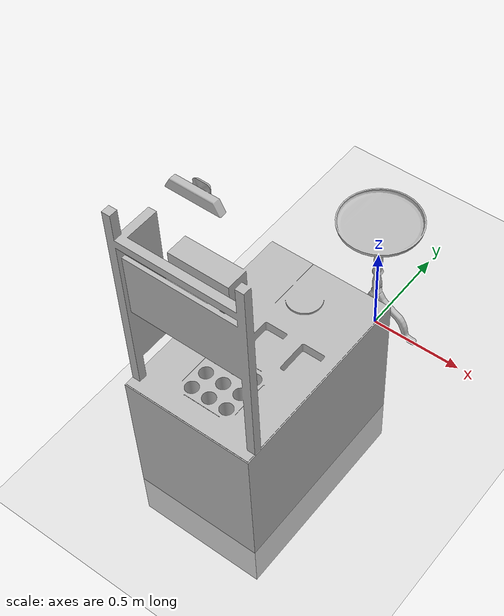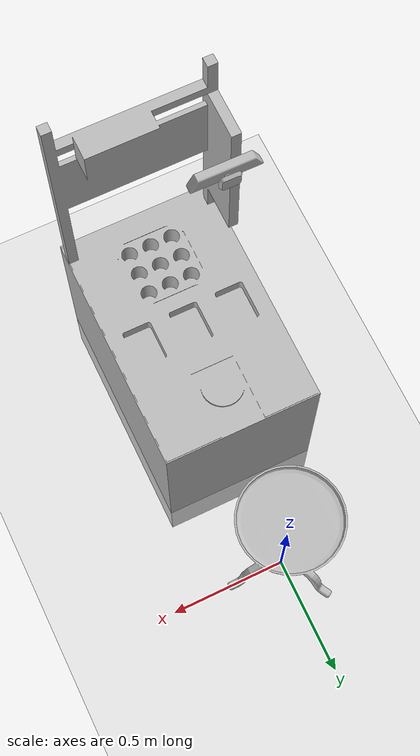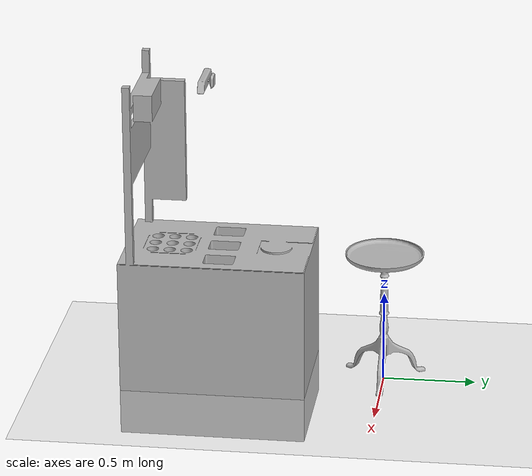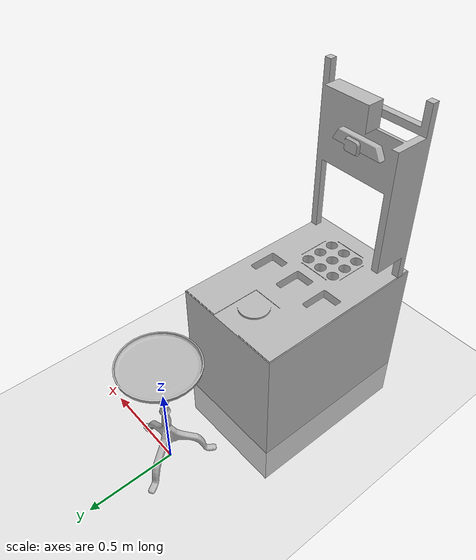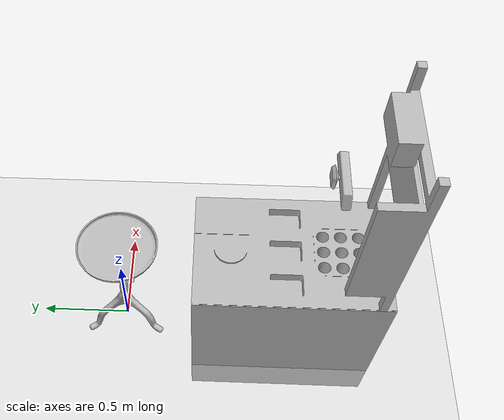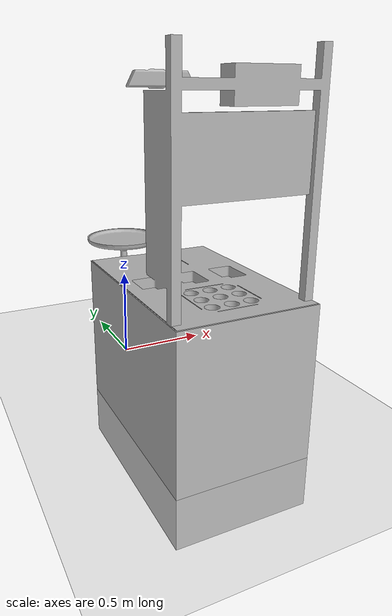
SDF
<?xml version="1.0" ?>

<sdf version="1.6">

  <world name="ur5_world">

    <plugin name="ros_link_attacher_plugin" filename="libgazebo_ros_link_attacher.so"/>
    <gui>
      <camera name="user_camera">
        <pose>1.4 -2.3 1.4 0.0 0.25 1.9</pose>
      </camera>
    </gui>

    <gravity>0 0 -9.81</gravity>

    <physics name="default_physics" default="0" type="ode">
      <max_step_size>0.001</max_step_size>
      <real_time_factor>1</real_time_factor>
      <real_time_update_rate>1000</real_time_update_rate>
    </physics>

    <scene>
      <ambient>0.4 0.4 0.4 1</ambient>
      <background>0.7 0.7 0.7 1</background>
      <shadows>false</shadows>
    </scene>

    <!-- Light Source -->
    <include>
      <uri>model://sun</uri>
    </include>

    <!-- A ground plane -->
    <include>
      <uri>model://ground_plane</uri>
      <pose>0 0 0 0 0 0</pose>
    </include>

    <!-- Table -->
    <model name="modern_table">
      <static>true</static>
      <include>
        <uri>model://BasketTable</uri>
         <pose>0 -0.9 0 0 0 -3.1415926535</pose>
      </include>
    </model>

      <!-- Robot Base -->
    <model name="robot_base">
      <static>true</static>
      <include>
        <uri>model://robot_base</uri>
         <pose>0 0 -0.010370 0 0 0</pose>
      </include>
    </model>

    <!-- Bolzen -->

    <!-- Kinect camera used for detection -0.58 -0.528 -0.437720 -0.50-->
    <model name="kinect">
      <static>true</static>
      <include>
        <uri>model://kinect</uri>
        <pose>-0.2 -1.0 1.58 1.58 1.57079 0</pose>  <!-- @sadith moving camera a little bit -->
      </include>
    </model>

  </world>
</sdf>

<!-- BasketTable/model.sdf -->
<sdf version="1.7">
  <model name="basket_table">
    <static>true</static>
    <link name="link">
      <pose>0 0 0.74 0 0 0</pose>

      <collision name="surface">
        <pose>0 0 -0.015 0 0 0</pose>
        <geometry>
          <mesh>
            <uri>model://BasketTable/meshes/BasketTable.stl</uri>
            <scale>0.001 0.001 0.001 </scale>
          </mesh>
        </geometry>
      </collision>

      <visual name="visual">
        <geometry>
          <mesh>
            <uri>model://BasketTable/meshes/BasketTable.stl</uri>
            <scale>0.001 0.001 0.001 </scale>
          </mesh>
        </geometry>
        <light type="directional" name="some_light">
          <diffuse>0.7 0.7 0.7 0</diffuse>
          <specular>1 1 1 0</specular>
          <direction>-1 -1 -1</direction>
        </light>
      </visual>
    </link>
  </model>
</sdf>

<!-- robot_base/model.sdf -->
<sdf version="1.7">
  <model name="robot_base">
    <static>true</static>
    <link name="base-link">
      <pose>0 0 0.73 0 0 0</pose>

      <collision name="surface">
        <pose>0 0 -0.015 0 0 0</pose>
        <geometry>
          <box>
            <size>2.35 1 0.03</size>
          </box>
        </geometry>
      </collision>

      <visual name="visual">
        <geometry>
          <mesh>
            <uri>model://robot_base/meshes/robot_base.dae</uri>
          </mesh>
        </geometry>
      </visual>
    </link>
  </model>
</sdf>

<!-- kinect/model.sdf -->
<sdf version="1.5">
  <model name="kinect">
    <pose>0 0 0.036 0 0 0</pose>
    <link name="camera-link">
      <inertial>
        <mass>0.1</mass>
      </inertial>
      <collision name="collision">
        <geometry>
          <box>
            <size>0.073000 0.276000 0.072000</size>
          </box>
        </geometry>
      </collision>
      <visual name="visual">
        <geometry>
          <mesh>
            <uri>model://kinect/meshes/kinect.dae</uri>
          </mesh>
        </geometry>
      </visual>
      <sensor name="camera" type="depth">
        <update_rate>20</update_rate>
        <camera>
          <horizontal_fov>1.047198</horizontal_fov>
          <image>
            <width>640</width>
            <height>480</height>
            <format>R8G8B8</format>
          </image>
          <clip>
            <near>0.05</near>
            <far>3</far>
          </clip>
        </camera>
        <plugin name="camera_plugin" filename="libgazebo_ros_openni_kinect.so">
          <baseline>0.2</baseline>
          <alwaysOn>true</alwaysOn>
          <updateRate>0.0</updateRate>
          <cameraName>camera_ir</cameraName>
          <imageTopicName>/camera/color/image_raw</imageTopicName>
          <cameraInfoTopicName>/camera/color/camera_info</cameraInfoTopicName>
          <depthImageTopicName>/camera/depth/image_raw</depthImageTopicName>
          <depthImageCameraInfoTopicName>/camera/depth/camera_info</depthImageCameraInfoTopicName>
          <pointCloudTopicName>/camera/depth/points</pointCloudTopicName>
          <frameName>camera_link</frameName>
          <pointCloudCutoff>0.5</pointCloudCutoff>
          <pointCloudCutoffMax>3.0</pointCloudCutoffMax>
          <distortionK1>0</distortionK1>
          <distortionK2>0</distortionK2>
          <distortionK3>0</distortionK3>
          <distortionT1>0</distortionT1>
          <distortionT2>0</distortionT2>
          <CxPrime>0</CxPrime>
          <Cx>0</Cx>
          <Cy>0</Cy>
          <focalLength>0</focalLength>
          <hackBaseline>0</hackBaseline>
        </plugin>
      </sensor>
    </link>
  </model>
</sdf>
